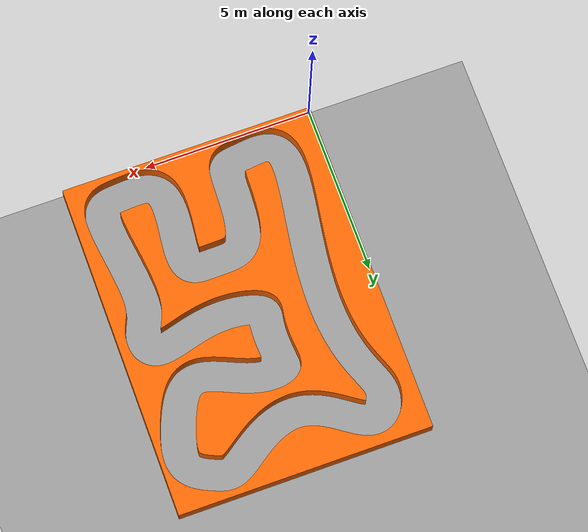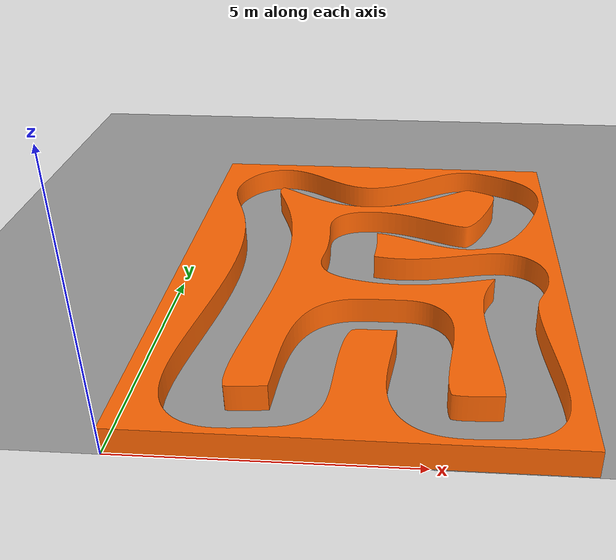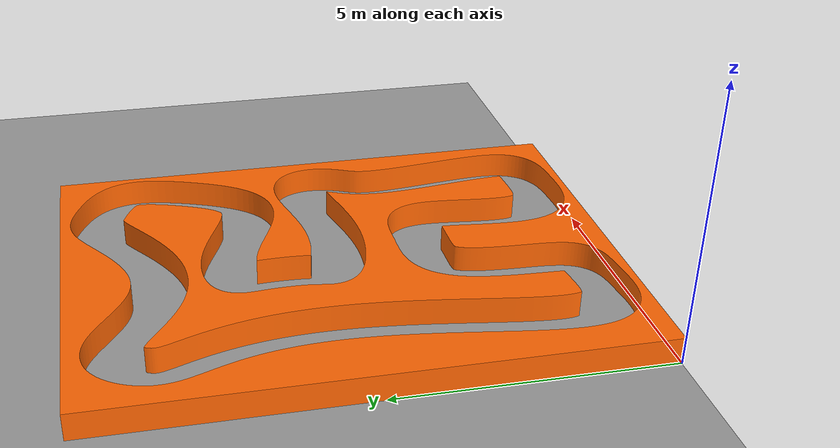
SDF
<sdf version="1.6">
  <world name="empty">

    <physics name="1ms" type="ignored">
      <max_step_size>0.001</max_step_size>
      <real_time_factor>10.0</real_time_factor>
    </physics>

    <plugin filename="gz-sim-physics-system" name="gz::sim::systems::Physics">
    </plugin>
    <plugin filename="gz-sim-sensors-system" name="gz::sim::systems::Sensors">
      <render_engine>ogre2</render_engine>
    </plugin>
    <plugin filename="gz-sim-user-commands-system" name="gz::sim::systems::UserCommands">
    </plugin>
    <plugin filename="gz-sim-scene-broadcaster-system" name="gz::sim::systems::SceneBroadcaster">
    </plugin>

    <scene>
      <ambient>1.0 1.0 1.0</ambient>
      <background>0.8 0.8 0.8</background>
      <sky></sky>
    </scene>

    <model name="base_plate">
      <pose>0 20 0 0 0 0</pose>
      <static>true</static>
      <link name="link">
        <collision name="collision">
          <geometry>
            <plane>
              <normal>0 0 1</normal>
              <size>100 100</size>
            </plane>
          </geometry>
        </collision>
        <visual name="visual">
          <geometry>
            <plane>
              <normal>0 0 1</normal>
              <size>29 40</size>
            </plane>
          </geometry>
          <material>
            <ambient>0.6 0.6 0.6 1</ambient>
            <diffuse>0.6 0.6 0.6 1</diffuse>
            <specular>0.8 0.8 0.8 1</specular>
          </material>
        </visual>
      </link>
    </model>

    <model name="ground_plane">
      <pose>0 0 -0.1 0 0 0</pose>
      <static>true</static>
      <link name="link">
        <collision name="collision">
          <geometry>
            <plane>
              <normal>0 0 1</normal>
              <size>100 100</size>
            </plane>
          </geometry>
        </collision>
        <visual name="visual">
          <geometry>
            <plane>
              <normal>0 0 1</normal>
              <size>100 100</size>
            </plane>
          </geometry>
          <material>
            <ambient>0.2 0.2 0.2 1</ambient>
            <diffuse>0.2 0.2 0.2 1</diffuse>
            <specular>0.8 0.8 0.8 1</specular>
          </material>
        </visual>
      </link>
    </model>

    <light type="directional" name="sun">
      <cast_shadows>true</cast_shadows>
      <pose>0 0 10 0 0 0</pose>
      <diffuse>1 1 1 1</diffuse>
      <specular>0.5 0.5 0.5 1</specular>
      <attenuation>
        <range>1000</range>
        <constant>0.9</constant>
        <linear>0.01</linear>
        <quadratic>0.001</quadratic>
      </attenuation>
      <direction>-0.5 0.1 -0.9</direction>
    </light>

    <model name="track_01_1m">
      <pose>0 0 0 0 0 0</pose>
      <static>true</static>
      <link name="track">
        <visual name="track_vis">
          <geometry>
            <mesh>
              <uri>/home/anyone/autonomous_f1tenth/src/environments/meshes/track_01_1m.stl</uri>
              <scale>0.001 0.001 0.001</scale>
            </mesh>
          </geometry>
          <material>
            <ambient>1 0.4 0 1</ambient>
            <diffuse>1 0.4 0.01 1</diffuse>
            <specular>0.2 0.2 0.2 0.1</specular>
          </material>
        </visual>
        <collision name="track_col">
          <geometry>
            <mesh>
              <uri>/home/anyone/autonomous_f1tenth/src/environments/meshes/track_01_1m.stl</uri>
              <scale>0.001 0.001 0.001</scale>
            </mesh>
          </geometry>
        </collision>
      </link>
    </model>
  </world>
</sdf>
